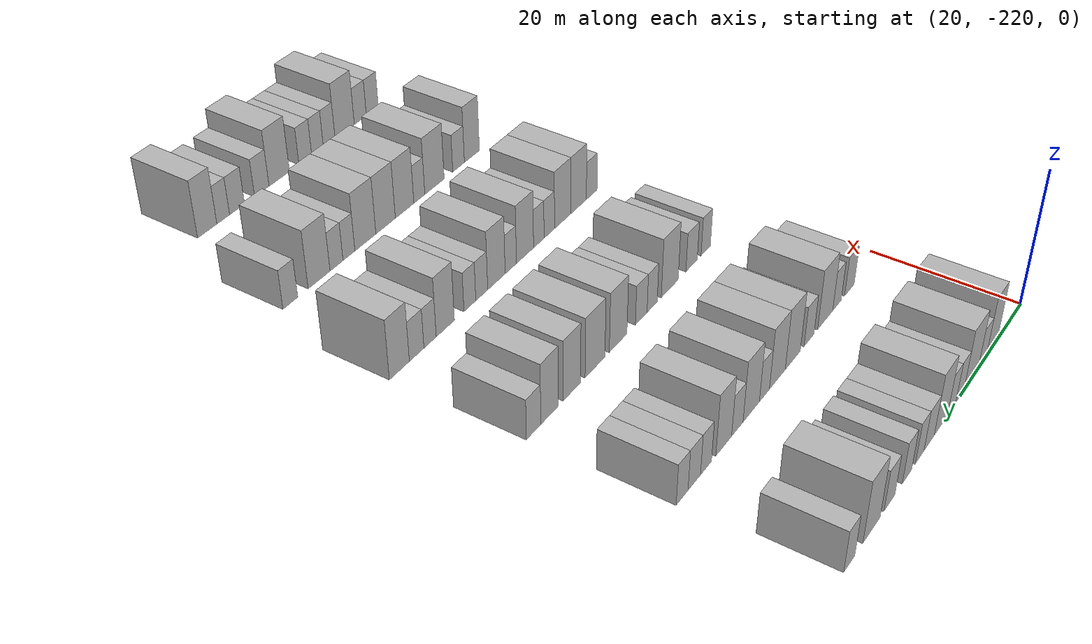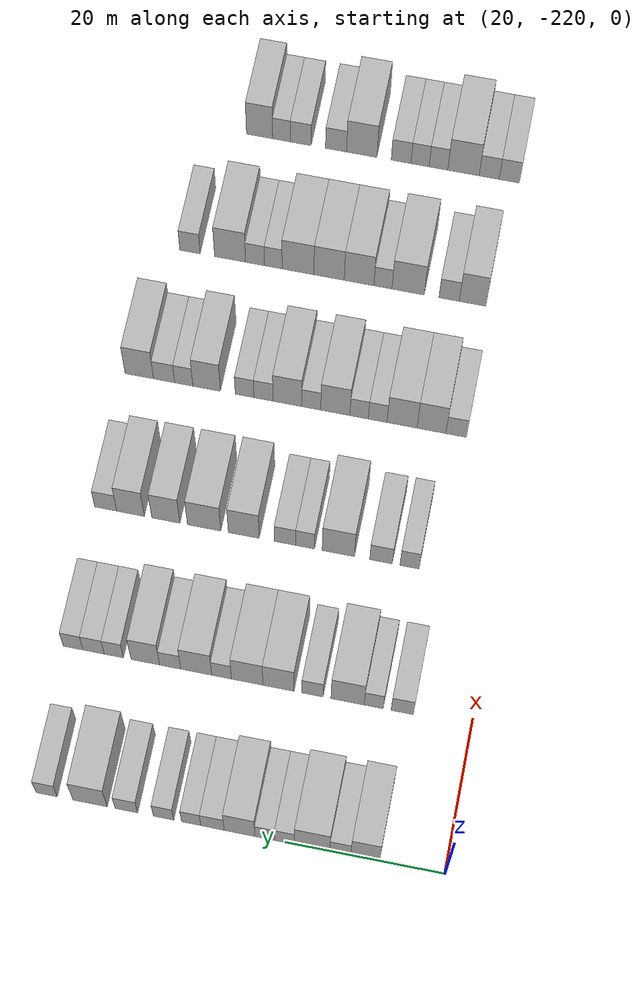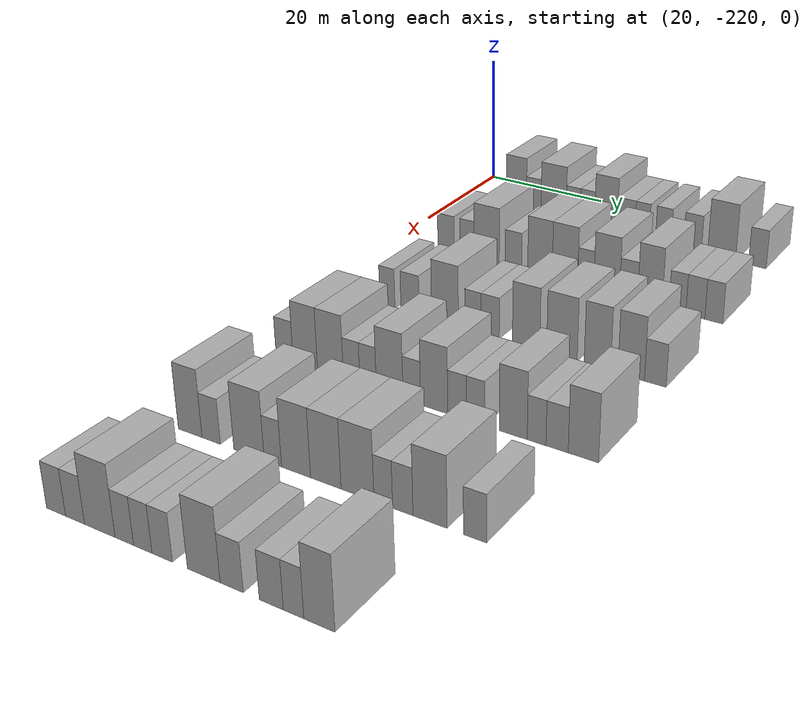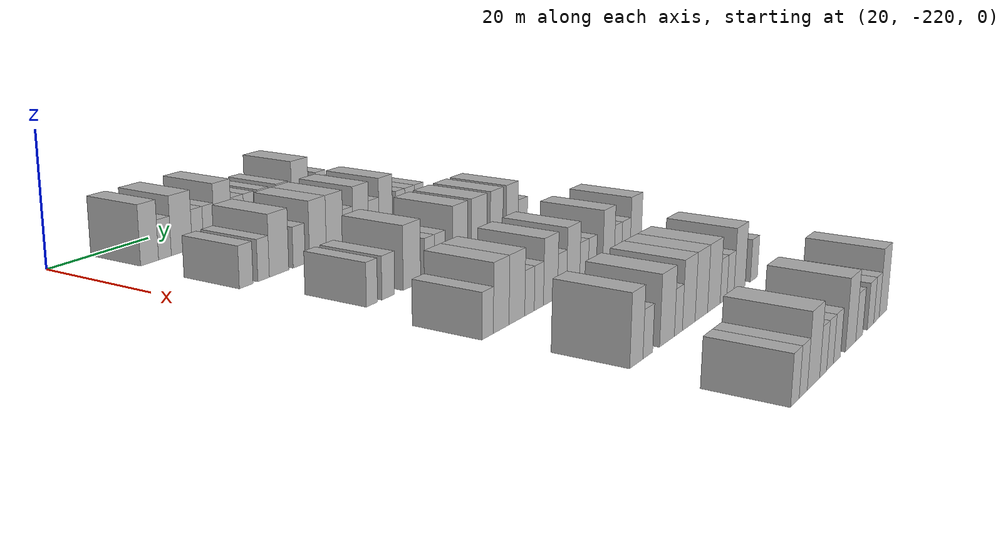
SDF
<sdf version="1.6">
 <world name="default">
  <model name="building_38">
   <static>1</static>
   <pose>25.0000 -209.9758 0 0.000000 0.000000 0.000000</pose>
   <link name="link">
    <pose>0 0 4.50 0 0 0</pose>
    <collision name="collision"><geometry><box><size>10.0000 3.6077 9.0000</size></box></geometry></collision>
    <visual name="visual">
     <cast_shadows>0</cast_shadows>
     <geometry><box><size>10.0000 3.6077 9.0000</size></box></geometry>
     <material>
      <script>
       <uri>model://HANNAS_wall/materials/scripts</uri>
       <uri>model://HANNAS_wall/materials/textures</uri>
       <name>vrc/HANNAS_wall</name>
      </script>
     </material>
    </visual>
   </link>
  </model>
  <model name="building_39">
   <static>1</static>
   <pose>25.0000 -206.8607 0 0.000000 0.000000 0.000000</pose>
   <link name="link">
    <pose>0 0 3.00 0 0 0</pose>
    <collision name="collision"><geometry><box><size>10.0000 2.6225 6.0000</size></box></geometry></collision>
    <visual name="visual">
     <cast_shadows>0</cast_shadows>
     <geometry><box><size>10.0000 2.6225 6.0000</size></box></geometry>
     <material>
      <script>
       <uri>model://HANNAS_wall/materials/scripts</uri>
       <uri>model://HANNAS_wall/materials/textures</uri>
       <name>vrc/HANNAS_wall</name>
      </script>
     </material>
    </visual>
   </link>
  </model>
  <model name="building_40">
   <static>1</static>
   <pose>25.0000 -203.3271 0 0.000000 0.000000 0.000000</pose>
   <link name="link">
    <pose>0 0 4.50 0 0 0</pose>
    <collision name="collision"><geometry><box><size>10.0000 4.4448 9.0000</size></box></geometry></collision>
    <visual name="visual">
     <cast_shadows>0</cast_shadows>
     <geometry><box><size>10.0000 4.4448 9.0000</size></box></geometry>
     <material>
      <script>
       <uri>model://HANNAS_wall/materials/scripts</uri>
       <uri>model://HANNAS_wall/materials/textures</uri>
       <name>vrc/HANNAS_wall</name>
      </script>
     </material>
    </visual>
   </link>
  </model>
  <model name="building_41">
   <static>1</static>
   <pose>25.0000 -199.8717 0 0.000000 0.000000 0.000000</pose>
   <link name="link">
    <pose>0 0 3.00 0 0 0</pose>
    <collision name="collision"><geometry><box><size>10.0000 2.4660 6.0000</size></box></geometry></collision>
    <visual name="visual">
     <cast_shadows>0</cast_shadows>
     <geometry><box><size>10.0000 2.4660 6.0000</size></box></geometry>
     <material>
      <script>
       <uri>model://HANNAS_wall/materials/scripts</uri>
       <uri>model://HANNAS_wall/materials/textures</uri>
       <name>vrc/HANNAS_wall</name>
      </script>
     </material>
    </visual>
   </link>
  </model>
  <model name="building_42">
   <static>1</static>
   <pose>25.0000 -197.4052 0 0.000000 0.000000 0.000000</pose>
   <link name="link">
    <pose>0 0 3.00 0 0 0</pose>
    <collision name="collision"><geometry><box><size>10.0000 2.4670 6.0000</size></box></geometry></collision>
    <visual name="visual">
     <cast_shadows>0</cast_shadows>
     <geometry><box><size>10.0000 2.4670 6.0000</size></box></geometry>
     <material>
      <script>
       <uri>model://HANNAS_wall/materials/scripts</uri>
       <uri>model://HANNAS_wall/materials/textures</uri>
       <name>vrc/HANNAS_wall</name>
      </script>
     </material>
    </visual>
   </link>
  </model>
  <model name="building_43">
   <static>1</static>
   <pose>25.0000 -194.2244 0 0.000000 0.000000 0.000000</pose>
   <link name="link">
    <pose>0 0 4.50 0 0 0</pose>
    <collision name="collision"><geometry><box><size>10.0000 3.8945 9.0000</size></box></geometry></collision>
    <visual name="visual">
     <cast_shadows>0</cast_shadows>
     <geometry><box><size>10.0000 3.8945 9.0000</size></box></geometry>
     <material>
      <script>
       <uri>model://HANNAS_wall/materials/scripts</uri>
       <uri>model://HANNAS_wall/materials/textures</uri>
       <name>vrc/HANNAS_wall</name>
      </script>
     </material>
    </visual>
   </link>
  </model>
  <model name="building_44">
   <static>1</static>
   <pose>25.0000 -190.7999 0 0.000000 0.000000 0.000000</pose>
   <link name="link">
    <pose>0 0 3.00 0 0 0</pose>
    <collision name="collision"><geometry><box><size>10.0000 2.9545 6.0000</size></box></geometry></collision>
    <visual name="visual">
     <cast_shadows>0</cast_shadows>
     <geometry><box><size>10.0000 2.9545 6.0000</size></box></geometry>
     <material>
      <script>
       <uri>model://HANNAS_wall/materials/scripts</uri>
       <uri>model://HANNAS_wall/materials/textures</uri>
       <name>vrc/HANNAS_wall</name>
      </script>
     </material>
    </visual>
   </link>
  </model>
  <model name="building_45">
   <static>1</static>
   <pose>25.0000 -188.1110 0 0.000000 0.000000 0.000000</pose>
   <link name="link">
    <pose>0 0 3.00 0 0 0</pose>
    <collision name="collision"><geometry><box><size>10.0000 2.4233 6.0000</size></box></geometry></collision>
    <visual name="visual">
     <cast_shadows>0</cast_shadows>
     <geometry><box><size>10.0000 2.4233 6.0000</size></box></geometry>
     <material>
      <script>
       <uri>model://HANNAS_wall/materials/scripts</uri>
       <uri>model://HANNAS_wall/materials/textures</uri>
       <name>vrc/HANNAS_wall</name>
      </script>
     </material>
    </visual>
   </link>
  </model>
  <model name="building_46">
   <static>1</static>
   <pose>25.0000 -184.6166 0 0.000000 0.000000 0.000000</pose>
   <link name="link">
    <pose>0 0 3.00 0 0 0</pose>
    <collision name="collision"><geometry><box><size>10.0000 2.5656 6.0000</size></box></geometry></collision>
    <visual name="visual">
     <cast_shadows>0</cast_shadows>
     <geometry><box><size>10.0000 2.5656 6.0000</size></box></geometry>
     <material>
      <script>
       <uri>model://HANNAS_wall/materials/scripts</uri>
       <uri>model://HANNAS_wall/materials/textures</uri>
       <name>vrc/HANNAS_wall</name>
      </script>
     </material>
    </visual>
   </link>
  </model>
  <model name="building_47">
   <static>1</static>
   <pose>25.0000 -179.9043 0 0.000000 0.000000 0.000000</pose>
   <link name="link">
    <pose>0 0 3.00 0 0 0</pose>
    <collision name="collision"><geometry><box><size>10.0000 2.8590 6.0000</size></box></geometry></collision>
    <visual name="visual">
     <cast_shadows>0</cast_shadows>
     <geometry><box><size>10.0000 2.8590 6.0000</size></box></geometry>
     <material>
      <script>
       <uri>model://HANNAS_wall/materials/scripts</uri>
       <uri>model://HANNAS_wall/materials/textures</uri>
       <name>vrc/HANNAS_wall</name>
      </script>
     </material>
    </visual>
   </link>
  </model>
  <model name="building_48">
   <static>1</static>
   <pose>25.0000 -175.2911 0 0.000000 0.000000 0.000000</pose>
   <link name="link">
    <pose>0 0 4.50 0 0 0</pose>
    <collision name="collision"><geometry><box><size>10.0000 4.3674 9.0000</size></box></geometry></collision>
    <visual name="visual">
     <cast_shadows>0</cast_shadows>
     <geometry><box><size>10.0000 4.3674 9.0000</size></box></geometry>
     <material>
      <script>
       <uri>model://HANNAS_wall/materials/scripts</uri>
       <uri>model://HANNAS_wall/materials/textures</uri>
       <name>vrc/HANNAS_wall</name>
      </script>
     </material>
    </visual>
   </link>
  </model>
  <model name="building_49">
   <static>1</static>
   <pose>25.0000 -169.7590 0 0.000000 0.000000 0.000000</pose>
   <link name="link">
    <pose>0 0 3.00 0 0 0</pose>
    <collision name="collision"><geometry><box><size>10.0000 2.6968 6.0000</size></box></geometry></collision>
    <visual name="visual">
     <cast_shadows>0</cast_shadows>
     <geometry><box><size>10.0000 2.6968 6.0000</size></box></geometry>
     <material>
      <script>
       <uri>model://HANNAS_wall/materials/scripts</uri>
       <uri>model://HANNAS_wall/materials/textures</uri>
       <name>vrc/HANNAS_wall</name>
      </script>
     </material>
    </visual>
   </link>
  </model>
  <model name="building_210">
   <static>1</static>
   <pose>44.0000 -211.0992 0 0.000000 0.000000 0.000000</pose>
   <link name="link">
    <pose>0 0 3.00 0 0 0</pose>
    <collision name="collision"><geometry><box><size>10.0000 2.8357 6.0000</size></box></geometry></collision>
    <visual name="visual">
     <cast_shadows>0</cast_shadows>
     <geometry><box><size>10.0000 2.8357 6.0000</size></box></geometry>
     <material>
      <script>
       <uri>model://HANNAS_wall/materials/scripts</uri>
       <uri>model://HANNAS_wall/materials/textures</uri>
       <name>vrc/HANNAS_wall</name>
      </script>
     </material>
    </visual>
   </link>
  </model>
  <model name="building_211">
   <static>1</static>
   <pose>44.0000 -207.4579 0 0.000000 0.000000 0.000000</pose>
   <link name="link">
    <pose>0 0 3.00 0 0 0</pose>
    <collision name="collision"><geometry><box><size>10.0000 2.4468 6.0000</size></box></geometry></collision>
    <visual name="visual">
     <cast_shadows>0</cast_shadows>
     <geometry><box><size>10.0000 2.4468 6.0000</size></box></geometry>
     <material>
      <script>
       <uri>model://HANNAS_wall/materials/scripts</uri>
       <uri>model://HANNAS_wall/materials/textures</uri>
       <name>vrc/HANNAS_wall</name>
      </script>
     </material>
    </visual>
   </link>
  </model>
  <model name="building_212">
   <static>1</static>
   <pose>44.0000 -204.1045 0 0.000000 0.000000 0.000000</pose>
   <link name="link">
    <pose>0 0 4.50 0 0 0</pose>
    <collision name="collision"><geometry><box><size>10.0000 4.2601 9.0000</size></box></geometry></collision>
    <visual name="visual">
     <cast_shadows>0</cast_shadows>
     <geometry><box><size>10.0000 4.2601 9.0000</size></box></geometry>
     <material>
      <script>
       <uri>model://HANNAS_wall/materials/scripts</uri>
       <uri>model://HANNAS_wall/materials/textures</uri>
       <name>vrc/HANNAS_wall</name>
      </script>
     </material>
    </visual>
   </link>
  </model>
  <model name="building_213">
   <static>1</static>
   <pose>44.0000 -199.6056 0 0.000000 0.000000 0.000000</pose>
   <link name="link">
    <pose>0 0 3.00 0 0 0</pose>
    <collision name="collision"><geometry><box><size>10.0000 2.7378 6.0000</size></box></geometry></collision>
    <visual name="visual">
     <cast_shadows>0</cast_shadows>
     <geometry><box><size>10.0000 2.7378 6.0000</size></box></geometry>
     <material>
      <script>
       <uri>model://HANNAS_wall/materials/scripts</uri>
       <uri>model://HANNAS_wall/materials/textures</uri>
       <name>vrc/HANNAS_wall</name>
      </script>
     </material>
    </visual>
   </link>
  </model>
  <model name="building_214">
   <static>1</static>
   <pose>44.0000 -195.2384 0 0.000000 0.000000 0.000000</pose>
   <link name="link">
    <pose>0 0 4.50 0 0 0</pose>
    <collision name="collision"><geometry><box><size>10.0000 3.9965 9.0000</size></box></geometry></collision>
    <visual name="visual">
     <cast_shadows>0</cast_shadows>
     <geometry><box><size>10.0000 3.9965 9.0000</size></box></geometry>
     <material>
      <script>
       <uri>model://HANNAS_wall/materials/scripts</uri>
       <uri>model://HANNAS_wall/materials/textures</uri>
       <name>vrc/HANNAS_wall</name>
      </script>
     </material>
    </visual>
   </link>
  </model>
  <model name="building_215">
   <static>1</static>
   <pose>44.0000 -191.2073 0 0.000000 0.000000 0.000000</pose>
   <link name="link">
    <pose>0 0 4.50 0 0 0</pose>
    <collision name="collision"><geometry><box><size>10.0000 4.0656 9.0000</size></box></geometry></collision>
    <visual name="visual">
     <cast_shadows>0</cast_shadows>
     <geometry><box><size>10.0000 4.0656 9.0000</size></box></geometry>
     <material>
      <script>
       <uri>model://HANNAS_wall/materials/scripts</uri>
       <uri>model://HANNAS_wall/materials/textures</uri>
       <name>vrc/HANNAS_wall</name>
      </script>
     </material>
    </visual>
   </link>
  </model>
  <model name="building_216">
   <static>1</static>
   <pose>44.0000 -187.9061 0 0.000000 0.000000 0.000000</pose>
   <link name="link">
    <pose>0 0 3.00 0 0 0</pose>
    <collision name="collision"><geometry><box><size>10.0000 2.5368 6.0000</size></box></geometry></collision>
    <visual name="visual">
     <cast_shadows>0</cast_shadows>
     <geometry><box><size>10.0000 2.5368 6.0000</size></box></geometry>
     <material>
      <script>
       <uri>model://HANNAS_wall/materials/scripts</uri>
       <uri>model://HANNAS_wall/materials/textures</uri>
       <name>vrc/HANNAS_wall</name>
      </script>
     </material>
    </visual>
   </link>
  </model>
  <model name="building_217">
   <static>1</static>
   <pose>44.0000 -184.6345 0 0.000000 0.000000 0.000000</pose>
   <link name="link">
    <pose>0 0 4.50 0 0 0</pose>
    <collision name="collision"><geometry><box><size>10.0000 4.0064 9.0000</size></box></geometry></collision>
    <visual name="visual">
     <cast_shadows>0</cast_shadows>
     <geometry><box><size>10.0000 4.0064 9.0000</size></box></geometry>
     <material>
      <script>
       <uri>model://HANNAS_wall/materials/scripts</uri>
       <uri>model://HANNAS_wall/materials/textures</uri>
       <name>vrc/HANNAS_wall</name>
      </script>
     </material>
    </visual>
   </link>
  </model>
  <model name="building_218">
   <static>1</static>
   <pose>44.0000 -181.2583 0 0.000000 0.000000 0.000000</pose>
   <link name="link">
    <pose>0 0 3.00 0 0 0</pose>
    <collision name="collision"><geometry><box><size>10.0000 2.7460 6.0000</size></box></geometry></collision>
    <visual name="visual">
     <cast_shadows>0</cast_shadows>
     <geometry><box><size>10.0000 2.7460 6.0000</size></box></geometry>
     <material>
      <script>
       <uri>model://HANNAS_wall/materials/scripts</uri>
       <uri>model://HANNAS_wall/materials/textures</uri>
       <name>vrc/HANNAS_wall</name>
      </script>
     </material>
    </visual>
   </link>
  </model>
  <model name="building_219">
   <static>1</static>
   <pose>44.0000 -178.0378 0 0.000000 0.000000 0.000000</pose>
   <link name="link">
    <pose>0 0 4.50 0 0 0</pose>
    <collision name="collision"><geometry><box><size>10.0000 3.6950 9.0000</size></box></geometry></collision>
    <visual name="visual">
     <cast_shadows>0</cast_shadows>
     <geometry><box><size>10.0000 3.6950 9.0000</size></box></geometry>
     <material>
      <script>
       <uri>model://HANNAS_wall/materials/scripts</uri>
       <uri>model://HANNAS_wall/materials/textures</uri>
       <name>vrc/HANNAS_wall</name>
      </script>
     </material>
    </visual>
   </link>
  </model>
  <model name="building_220">
   <static>1</static>
   <pose>44.0000 -173.9468 0 0.000000 0.000000 0.000000</pose>
   <link name="link">
    <pose>0 0 3.00 0 0 0</pose>
    <collision name="collision"><geometry><box><size>10.0000 2.4871 6.0000</size></box></geometry></collision>
    <visual name="visual">
     <cast_shadows>0</cast_shadows>
     <geometry><box><size>10.0000 2.4871 6.0000</size></box></geometry>
     <material>
      <script>
       <uri>model://HANNAS_wall/materials/scripts</uri>
       <uri>model://HANNAS_wall/materials/textures</uri>
       <name>vrc/HANNAS_wall</name>
      </script>
     </material>
    </visual>
   </link>
  </model>
  <model name="building_221">
   <static>1</static>
   <pose>44.0000 -171.3198 0 0.000000 0.000000 0.000000</pose>
   <link name="link">
    <pose>0 0 3.00 0 0 0</pose>
    <collision name="collision"><geometry><box><size>10.0000 2.7669 6.0000</size></box></geometry></collision>
    <visual name="visual">
     <cast_shadows>0</cast_shadows>
     <geometry><box><size>10.0000 2.7669 6.0000</size></box></geometry>
     <material>
      <script>
       <uri>model://HANNAS_wall/materials/scripts</uri>
       <uri>model://HANNAS_wall/materials/textures</uri>
       <name>vrc/HANNAS_wall</name>
      </script>
     </material>
    </visual>
   </link>
  </model>
  <model name="building_222">
   <static>1</static>
   <pose>44.0000 -168.6490 0 0.000000 0.000000 0.000000</pose>
   <link name="link">
    <pose>0 0 3.00 0 0 0</pose>
    <collision name="collision"><geometry><box><size>10.0000 2.5746 6.0000</size></box></geometry></collision>
    <visual name="visual">
     <cast_shadows>0</cast_shadows>
     <geometry><box><size>10.0000 2.5746 6.0000</size></box></geometry>
     <material>
      <script>
       <uri>model://HANNAS_wall/materials/scripts</uri>
       <uri>model://HANNAS_wall/materials/textures</uri>
       <name>vrc/HANNAS_wall</name>
      </script>
     </material>
    </visual>
   </link>
  </model>
  <model name="building_393">
   <static>1</static>
   <pose>63.0000 -208.5401 0 0.000000 0.000000 0.000000</pose>
   <link name="link">
    <pose>0 0 3.00 0 0 0</pose>
    <collision name="collision"><geometry><box><size>10.0000 2.4893 6.0000</size></box></geometry></collision>
    <visual name="visual">
     <cast_shadows>0</cast_shadows>
     <geometry><box><size>10.0000 2.4893 6.0000</size></box></geometry>
     <material>
      <script>
       <uri>model://HANNAS_wall/materials/scripts</uri>
       <uri>model://HANNAS_wall/materials/textures</uri>
       <name>vrc/HANNAS_wall</name>
      </script>
     </material>
    </visual>
   </link>
  </model>
  <model name="building_394">
   <static>1</static>
   <pose>63.0000 -204.8172 0 0.000000 0.000000 0.000000</pose>
   <link name="link">
    <pose>0 0 3.00 0 0 0</pose>
    <collision name="collision"><geometry><box><size>10.0000 2.9564 6.0000</size></box></geometry></collision>
    <visual name="visual">
     <cast_shadows>0</cast_shadows>
     <geometry><box><size>10.0000 2.9564 6.0000</size></box></geometry>
     <material>
      <script>
       <uri>model://HANNAS_wall/materials/scripts</uri>
       <uri>model://HANNAS_wall/materials/textures</uri>
       <name>vrc/HANNAS_wall</name>
      </script>
     </material>
    </visual>
   </link>
  </model>
  <model name="building_395">
   <static>1</static>
   <pose>63.0000 -199.2210 0 0.000000 0.000000 0.000000</pose>
   <link name="link">
    <pose>0 0 4.50 0 0 0</pose>
    <collision name="collision"><geometry><box><size>10.0000 4.2360 9.0000</size></box></geometry></collision>
    <visual name="visual">
     <cast_shadows>0</cast_shadows>
     <geometry><box><size>10.0000 4.2360 9.0000</size></box></geometry>
     <material>
      <script>
       <uri>model://HANNAS_wall/materials/scripts</uri>
       <uri>model://HANNAS_wall/materials/textures</uri>
       <name>vrc/HANNAS_wall</name>
      </script>
     </material>
    </visual>
   </link>
  </model>
  <model name="building_396">
   <static>1</static>
   <pose>63.0000 -194.8584 0 0.000000 0.000000 0.000000</pose>
   <link name="link">
    <pose>0 0 3.00 0 0 0</pose>
    <collision name="collision"><geometry><box><size>10.0000 2.4892 6.0000</size></box></geometry></collision>
    <visual name="visual">
     <cast_shadows>0</cast_shadows>
     <geometry><box><size>10.0000 2.4892 6.0000</size></box></geometry>
     <material>
      <script>
       <uri>model://HANNAS_wall/materials/scripts</uri>
       <uri>model://HANNAS_wall/materials/textures</uri>
       <name>vrc/HANNAS_wall</name>
      </script>
     </material>
    </visual>
   </link>
  </model>
  <model name="building_397">
   <static>1</static>
   <pose>63.0000 -192.2192 0 0.000000 0.000000 0.000000</pose>
   <link name="link">
    <pose>0 0 3.00 0 0 0</pose>
    <collision name="collision"><geometry><box><size>10.0000 2.7891 6.0000</size></box></geometry></collision>
    <visual name="visual">
     <cast_shadows>0</cast_shadows>
     <geometry><box><size>10.0000 2.7891 6.0000</size></box></geometry>
     <material>
      <script>
       <uri>model://HANNAS_wall/materials/scripts</uri>
       <uri>model://HANNAS_wall/materials/textures</uri>
       <name>vrc/HANNAS_wall</name>
      </script>
     </material>
    </visual>
   </link>
  </model>
  <model name="building_398">
   <static>1</static>
   <pose>63.0000 -186.7934 0 0.000000 0.000000 0.000000</pose>
   <link name="link">
    <pose>0 0 4.50 0 0 0</pose>
    <collision name="collision"><geometry><box><size>10.0000 4.0626 9.0000</size></box></geometry></collision>
    <visual name="visual">
     <cast_shadows>0</cast_shadows>
     <geometry><box><size>10.0000 4.0626 9.0000</size></box></geometry>
     <material>
      <script>
       <uri>model://HANNAS_wall/materials/scripts</uri>
       <uri>model://HANNAS_wall/materials/textures</uri>
       <name>vrc/HANNAS_wall</name>
      </script>
     </material>
    </visual>
   </link>
  </model>
  <model name="building_399">
   <static>1</static>
   <pose>63.0000 -181.5579 0 0.000000 0.000000 0.000000</pose>
   <link name="link">
    <pose>0 0 4.50 0 0 0</pose>
    <collision name="collision"><geometry><box><size>10.0000 4.4083 9.0000</size></box></geometry></collision>
    <visual name="visual">
     <cast_shadows>0</cast_shadows>
     <geometry><box><size>10.0000 4.4083 9.0000</size></box></geometry>
     <material>
      <script>
       <uri>model://HANNAS_wall/materials/scripts</uri>
       <uri>model://HANNAS_wall/materials/textures</uri>
       <name>vrc/HANNAS_wall</name>
      </script>
     </material>
    </visual>
   </link>
  </model>
  <model name="building_400">
   <static>1</static>
   <pose>63.0000 -176.4935 0 0.000000 0.000000 0.000000</pose>
   <link name="link">
    <pose>0 0 4.50 0 0 0</pose>
    <collision name="collision"><geometry><box><size>10.0000 3.7206 9.0000</size></box></geometry></collision>
    <visual name="visual">
     <cast_shadows>0</cast_shadows>
     <geometry><box><size>10.0000 3.7206 9.0000</size></box></geometry>
     <material>
      <script>
       <uri>model://HANNAS_wall/materials/scripts</uri>
       <uri>model://HANNAS_wall/materials/textures</uri>
       <name>vrc/HANNAS_wall</name>
      </script>
     </material>
    </visual>
   </link>
  </model>
  <model name="building_401">
   <static>1</static>
   <pose>63.0000 -171.8029 0 0.000000 0.000000 0.000000</pose>
   <link name="link">
    <pose>0 0 4.50 0 0 0</pose>
    <collision name="collision"><geometry><box><size>10.0000 3.6606 9.0000</size></box></geometry></collision>
    <visual name="visual">
     <cast_shadows>0</cast_shadows>
     <geometry><box><size>10.0000 3.6606 9.0000</size></box></geometry>
     <material>
      <script>
       <uri>model://HANNAS_wall/materials/scripts</uri>
       <uri>model://HANNAS_wall/materials/textures</uri>
       <name>vrc/HANNAS_wall</name>
      </script>
     </material>
    </visual>
   </link>
  </model>
  <model name="building_402">
   <static>1</static>
   <pose>63.0000 -168.5124 0 0.000000 0.000000 0.000000</pose>
   <link name="link">
    <pose>0 0 3.00 0 0 0</pose>
    <collision name="collision"><geometry><box><size>10.0000 2.9203 6.0000</size></box></geometry></collision>
    <visual name="visual">
     <cast_shadows>0</cast_shadows>
     <geometry><box><size>10.0000 2.9203 6.0000</size></box></geometry>
     <material>
      <script>
       <uri>model://HANNAS_wall/materials/scripts</uri>
       <uri>model://HANNAS_wall/materials/textures</uri>
       <name>vrc/HANNAS_wall</name>
      </script>
     </material>
    </visual>
   </link>
  </model>
  <model name="building_567">
   <static>1</static>
   <pose>82.0000 -211.2577 0 0.000000 0.000000 0.000000</pose>
   <link name="link">
    <pose>0 0 3.00 0 0 0</pose>
    <collision name="collision"><geometry><box><size>10.0000 2.7221 6.0000</size></box></geometry></collision>
    <visual name="visual">
     <cast_shadows>0</cast_shadows>
     <geometry><box><size>10.0000 2.7221 6.0000</size></box></geometry>
     <material>
      <script>
       <uri>model://HANNAS_wall/materials/scripts</uri>
       <uri>model://HANNAS_wall/materials/textures</uri>
       <name>vrc/HANNAS_wall</name>
      </script>
     </material>
    </visual>
   </link>
  </model>
  <model name="building_568">
   <static>1</static>
   <pose>82.0000 -207.9766 0 0.000000 0.000000 0.000000</pose>
   <link name="link">
    <pose>0 0 4.50 0 0 0</pose>
    <collision name="collision"><geometry><box><size>10.0000 3.8401 9.0000</size></box></geometry></collision>
    <visual name="visual">
     <cast_shadows>0</cast_shadows>
     <geometry><box><size>10.0000 3.8401 9.0000</size></box></geometry>
     <material>
      <script>
       <uri>model://HANNAS_wall/materials/scripts</uri>
       <uri>model://HANNAS_wall/materials/textures</uri>
       <name>vrc/HANNAS_wall</name>
      </script>
     </material>
    </visual>
   </link>
  </model>
  <model name="building_569">
   <static>1</static>
   <pose>82.0000 -204.0519 0 0.000000 0.000000 0.000000</pose>
   <link name="link">
    <pose>0 0 4.50 0 0 0</pose>
    <collision name="collision"><geometry><box><size>10.0000 4.0092 9.0000</size></box></geometry></collision>
    <visual name="visual">
     <cast_shadows>0</cast_shadows>
     <geometry><box><size>10.0000 4.0092 9.0000</size></box></geometry>
     <material>
      <script>
       <uri>model://HANNAS_wall/materials/scripts</uri>
       <uri>model://HANNAS_wall/materials/textures</uri>
       <name>vrc/HANNAS_wall</name>
      </script>
     </material>
    </visual>
   </link>
  </model>
  <model name="building_570">
   <static>1</static>
   <pose>82.0000 -200.7986 0 0.000000 0.000000 0.000000</pose>
   <link name="link">
    <pose>0 0 3.00 0 0 0</pose>
    <collision name="collision"><geometry><box><size>10.0000 2.4975 6.0000</size></box></geometry></collision>
    <visual name="visual">
     <cast_shadows>0</cast_shadows>
     <geometry><box><size>10.0000 2.4975 6.0000</size></box></geometry>
     <material>
      <script>
       <uri>model://HANNAS_wall/materials/scripts</uri>
       <uri>model://HANNAS_wall/materials/textures</uri>
       <name>vrc/HANNAS_wall</name>
      </script>
     </material>
    </visual>
   </link>
  </model>
  <model name="building_571">
   <static>1</static>
   <pose>82.0000 -198.3171 0 0.000000 0.000000 0.000000</pose>
   <link name="link">
    <pose>0 0 3.00 0 0 0</pose>
    <collision name="collision"><geometry><box><size>10.0000 2.4657 6.0000</size></box></geometry></collision>
    <visual name="visual">
     <cast_shadows>0</cast_shadows>
     <geometry><box><size>10.0000 2.4657 6.0000</size></box></geometry>
     <material>
      <script>
       <uri>model://HANNAS_wall/materials/scripts</uri>
       <uri>model://HANNAS_wall/materials/textures</uri>
       <name>vrc/HANNAS_wall</name>
      </script>
     </material>
    </visual>
   </link>
  </model>
  <model name="building_572">
   <static>1</static>
   <pose>82.0000 -195.1207 0 0.000000 0.000000 0.000000</pose>
   <link name="link">
    <pose>0 0 4.50 0 0 0</pose>
    <collision name="collision"><geometry><box><size>10.0000 3.9270 9.0000</size></box></geometry></collision>
    <visual name="visual">
     <cast_shadows>0</cast_shadows>
     <geometry><box><size>10.0000 3.9270 9.0000</size></box></geometry>
     <material>
      <script>
       <uri>model://HANNAS_wall/materials/scripts</uri>
       <uri>model://HANNAS_wall/materials/textures</uri>
       <name>vrc/HANNAS_wall</name>
      </script>
     </material>
    </visual>
   </link>
  </model>
  <model name="building_573">
   <static>1</static>
   <pose>82.0000 -191.8842 0 0.000000 0.000000 0.000000</pose>
   <link name="link">
    <pose>0 0 3.00 0 0 0</pose>
    <collision name="collision"><geometry><box><size>10.0000 2.5460 6.0000</size></box></geometry></collision>
    <visual name="visual">
     <cast_shadows>0</cast_shadows>
     <geometry><box><size>10.0000 2.5460 6.0000</size></box></geometry>
     <material>
      <script>
       <uri>model://HANNAS_wall/materials/scripts</uri>
       <uri>model://HANNAS_wall/materials/textures</uri>
       <name>vrc/HANNAS_wall</name>
      </script>
     </material>
    </visual>
   </link>
  </model>
  <model name="building_574">
   <static>1</static>
   <pose>82.0000 -188.6836 0 0.000000 0.000000 0.000000</pose>
   <link name="link">
    <pose>0 0 4.50 0 0 0</pose>
    <collision name="collision"><geometry><box><size>10.0000 3.8553 9.0000</size></box></geometry></collision>
    <visual name="visual">
     <cast_shadows>0</cast_shadows>
     <geometry><box><size>10.0000 3.8553 9.0000</size></box></geometry>
     <material>
      <script>
       <uri>model://HANNAS_wall/materials/scripts</uri>
       <uri>model://HANNAS_wall/materials/textures</uri>
       <name>vrc/HANNAS_wall</name>
      </script>
     </material>
    </visual>
   </link>
  </model>
  <model name="building_575">
   <static>1</static>
   <pose>82.0000 -185.4660 0 0.000000 0.000000 0.000000</pose>
   <link name="link">
    <pose>0 0 3.00 0 0 0</pose>
    <collision name="collision"><geometry><box><size>10.0000 2.5798 6.0000</size></box></geometry></collision>
    <visual name="visual">
     <cast_shadows>0</cast_shadows>
     <geometry><box><size>10.0000 2.5798 6.0000</size></box></geometry>
     <material>
      <script>
       <uri>model://HANNAS_wall/materials/scripts</uri>
       <uri>model://HANNAS_wall/materials/textures</uri>
       <name>vrc/HANNAS_wall</name>
      </script>
     </material>
    </visual>
   </link>
  </model>
  <model name="building_576">
   <static>1</static>
   <pose>82.0000 -182.9208 0 0.000000 0.000000 0.000000</pose>
   <link name="link">
    <pose>0 0 3.00 0 0 0</pose>
    <collision name="collision"><geometry><box><size>10.0000 2.5107 6.0000</size></box></geometry></collision>
    <visual name="visual">
     <cast_shadows>0</cast_shadows>
     <geometry><box><size>10.0000 2.5107 6.0000</size></box></geometry>
     <material>
      <script>
       <uri>model://HANNAS_wall/materials/scripts</uri>
       <uri>model://HANNAS_wall/materials/textures</uri>
       <name>vrc/HANNAS_wall</name>
      </script>
     </material>
    </visual>
   </link>
  </model>
  <model name="building_577">
   <static>1</static>
   <pose>82.0000 -177.8015 0 0.000000 0.000000 0.000000</pose>
   <link name="link">
    <pose>0 0 4.50 0 0 0</pose>
    <collision name="collision"><geometry><box><size>10.0000 3.7279 9.0000</size></box></geometry></collision>
    <visual name="visual">
     <cast_shadows>0</cast_shadows>
     <geometry><box><size>10.0000 3.7279 9.0000</size></box></geometry>
     <material>
      <script>
       <uri>model://HANNAS_wall/materials/scripts</uri>
       <uri>model://HANNAS_wall/materials/textures</uri>
       <name>vrc/HANNAS_wall</name>
      </script>
     </material>
    </visual>
   </link>
  </model>
  <model name="building_578">
   <static>1</static>
   <pose>82.0000 -174.7078 0 0.000000 0.000000 0.000000</pose>
   <link name="link">
    <pose>0 0 3.00 0 0 0</pose>
    <collision name="collision"><geometry><box><size>10.0000 2.4595 6.0000</size></box></geometry></collision>
    <visual name="visual">
     <cast_shadows>0</cast_shadows>
     <geometry><box><size>10.0000 2.4595 6.0000</size></box></geometry>
     <material>
      <script>
       <uri>model://HANNAS_wall/materials/scripts</uri>
       <uri>model://HANNAS_wall/materials/textures</uri>
       <name>vrc/HANNAS_wall</name>
      </script>
     </material>
    </visual>
   </link>
  </model>
  <model name="building_579">
   <static>1</static>
   <pose>82.0000 -172.0420 0 0.000000 0.000000 0.000000</pose>
   <link name="link">
    <pose>0 0 3.00 0 0 0</pose>
    <collision name="collision"><geometry><box><size>10.0000 2.8720 6.0000</size></box></geometry></collision>
    <visual name="visual">
     <cast_shadows>0</cast_shadows>
     <geometry><box><size>10.0000 2.8720 6.0000</size></box></geometry>
     <material>
      <script>
       <uri>model://HANNAS_wall/materials/scripts</uri>
       <uri>model://HANNAS_wall/materials/textures</uri>
       <name>vrc/HANNAS_wall</name>
      </script>
     </material>
    </visual>
   </link>
  </model>
  <model name="building_580">
   <static>1</static>
   <pose>82.0000 -168.6805 0 0.000000 0.000000 0.000000</pose>
   <link name="link">
    <pose>0 0 4.50 0 0 0</pose>
    <collision name="collision"><geometry><box><size>10.0000 3.8512 9.0000</size></box></geometry></collision>
    <visual name="visual">
     <cast_shadows>0</cast_shadows>
     <geometry><box><size>10.0000 3.8512 9.0000</size></box></geometry>
     <material>
      <script>
       <uri>model://HANNAS_wall/materials/scripts</uri>
       <uri>model://HANNAS_wall/materials/textures</uri>
       <name>vrc/HANNAS_wall</name>
      </script>
     </material>
    </visual>
   </link>
  </model>
  <model name="building_741">
   <static>1</static>
   <pose>101.0000 -210.1217 0 0.000000 0.000000 0.000000</pose>
   <link name="link">
    <pose>0 0 4.50 0 0 0</pose>
    <collision name="collision"><geometry><box><size>10.0000 3.6058 9.0000</size></box></geometry></collision>
    <visual name="visual">
     <cast_shadows>0</cast_shadows>
     <geometry><box><size>10.0000 3.6058 9.0000</size></box></geometry>
     <material>
      <script>
       <uri>model://HANNAS_wall/materials/scripts</uri>
       <uri>model://HANNAS_wall/materials/textures</uri>
       <name>vrc/HANNAS_wall</name>
      </script>
     </material>
    </visual>
   </link>
  </model>
  <model name="building_742">
   <static>1</static>
   <pose>101.0000 -206.9413 0 0.000000 0.000000 0.000000</pose>
   <link name="link">
    <pose>0 0 3.00 0 0 0</pose>
    <collision name="collision"><geometry><box><size>10.0000 2.7550 6.0000</size></box></geometry></collision>
    <visual name="visual">
     <cast_shadows>0</cast_shadows>
     <geometry><box><size>10.0000 2.7550 6.0000</size></box></geometry>
     <material>
      <script>
       <uri>model://HANNAS_wall/materials/scripts</uri>
       <uri>model://HANNAS_wall/materials/textures</uri>
       <name>vrc/HANNAS_wall</name>
      </script>
     </material>
    </visual>
   </link>
  </model>
  <model name="building_743">
   <static>1</static>
   <pose>101.0000 -201.3552 0 0.000000 0.000000 0.000000</pose>
   <link name="link">
    <pose>0 0 4.50 0 0 0</pose>
    <collision name="collision"><geometry><box><size>10.0000 4.4173 9.0000</size></box></geometry></collision>
    <visual name="visual">
     <cast_shadows>0</cast_shadows>
     <geometry><box><size>10.0000 4.4173 9.0000</size></box></geometry>
     <material>
      <script>
       <uri>model://HANNAS_wall/materials/scripts</uri>
       <uri>model://HANNAS_wall/materials/textures</uri>
       <name>vrc/HANNAS_wall</name>
      </script>
     </material>
    </visual>
   </link>
  </model>
  <model name="building_744">
   <static>1</static>
   <pose>101.0000 -197.9193 0 0.000000 0.000000 0.000000</pose>
   <link name="link">
    <pose>0 0 3.00 0 0 0</pose>
    <collision name="collision"><geometry><box><size>10.0000 2.4545 6.0000</size></box></geometry></collision>
    <visual name="visual">
     <cast_shadows>0</cast_shadows>
     <geometry><box><size>10.0000 2.4545 6.0000</size></box></geometry>
     <material>
      <script>
       <uri>model://HANNAS_wall/materials/scripts</uri>
       <uri>model://HANNAS_wall/materials/textures</uri>
       <name>vrc/HANNAS_wall</name>
      </script>
     </material>
    </visual>
   </link>
  </model>
  <model name="building_745">
   <static>1</static>
   <pose>101.0000 -194.6621 0 0.000000 0.000000 0.000000</pose>
   <link name="link">
    <pose>0 0 4.50 0 0 0</pose>
    <collision name="collision"><geometry><box><size>10.0000 4.0599 9.0000</size></box></geometry></collision>
    <visual name="visual">
     <cast_shadows>0</cast_shadows>
     <geometry><box><size>10.0000 4.0599 9.0000</size></box></geometry>
     <material>
      <script>
       <uri>model://HANNAS_wall/materials/scripts</uri>
       <uri>model://HANNAS_wall/materials/textures</uri>
       <name>vrc/HANNAS_wall</name>
      </script>
     </material>
    </visual>
   </link>
  </model>
  <model name="building_746">
   <static>1</static>
   <pose>101.0000 -190.5523 0 0.000000 0.000000 0.000000</pose>
   <link name="link">
    <pose>0 0 4.50 0 0 0</pose>
    <collision name="collision"><geometry><box><size>10.0000 4.1598 9.0000</size></box></geometry></collision>
    <visual name="visual">
     <cast_shadows>0</cast_shadows>
     <geometry><box><size>10.0000 4.1598 9.0000</size></box></geometry>
     <material>
      <script>
       <uri>model://HANNAS_wall/materials/scripts</uri>
       <uri>model://HANNAS_wall/materials/textures</uri>
       <name>vrc/HANNAS_wall</name>
      </script>
     </material>
    </visual>
   </link>
  </model>
  <model name="building_747">
   <static>1</static>
   <pose>101.0000 -186.2913 0 0.000000 0.000000 0.000000</pose>
   <link name="link">
    <pose>0 0 4.50 0 0 0</pose>
    <collision name="collision"><geometry><box><size>10.0000 4.3621 9.0000</size></box></geometry></collision>
    <visual name="visual">
     <cast_shadows>0</cast_shadows>
     <geometry><box><size>10.0000 4.3621 9.0000</size></box></geometry>
     <material>
      <script>
       <uri>model://HANNAS_wall/materials/scripts</uri>
       <uri>model://HANNAS_wall/materials/textures</uri>
       <name>vrc/HANNAS_wall</name>
      </script>
     </material>
    </visual>
   </link>
  </model>
  <model name="building_748">
   <static>1</static>
   <pose>101.0000 -182.9018 0 0.000000 0.000000 0.000000</pose>
   <link name="link">
    <pose>0 0 3.00 0 0 0</pose>
    <collision name="collision"><geometry><box><size>10.0000 2.4169 6.0000</size></box></geometry></collision>
    <visual name="visual">
     <cast_shadows>0</cast_shadows>
     <geometry><box><size>10.0000 2.4169 6.0000</size></box></geometry>
     <material>
      <script>
       <uri>model://HANNAS_wall/materials/scripts</uri>
       <uri>model://HANNAS_wall/materials/textures</uri>
       <name>vrc/HANNAS_wall</name>
      </script>
     </material>
    </visual>
   </link>
  </model>
  <model name="building_749">
   <static>1</static>
   <pose>101.0000 -180.3934 0 0.000000 0.000000 0.000000</pose>
   <link name="link">
    <pose>0 0 3.00 0 0 0</pose>
    <collision name="collision"><geometry><box><size>10.0000 2.5998 6.0000</size></box></geometry></collision>
    <visual name="visual">
     <cast_shadows>0</cast_shadows>
     <geometry><box><size>10.0000 2.5998 6.0000</size></box></geometry>
     <material>
      <script>
       <uri>model://HANNAS_wall/materials/scripts</uri>
       <uri>model://HANNAS_wall/materials/textures</uri>
       <name>vrc/HANNAS_wall</name>
      </script>
     </material>
    </visual>
   </link>
  </model>
  <model name="building_750">
   <static>1</static>
   <pose>101.0000 -176.9566 0 0.000000 0.000000 0.000000</pose>
   <link name="link">
    <pose>0 0 4.50 0 0 0</pose>
    <collision name="collision"><geometry><box><size>10.0000 4.2739 9.0000</size></box></geometry></collision>
    <visual name="visual">
     <cast_shadows>0</cast_shadows>
     <geometry><box><size>10.0000 4.2739 9.0000</size></box></geometry>
     <material>
      <script>
       <uri>model://HANNAS_wall/materials/scripts</uri>
       <uri>model://HANNAS_wall/materials/textures</uri>
       <name>vrc/HANNAS_wall</name>
      </script>
     </material>
    </visual>
   </link>
  </model>
  <model name="building_751">
   <static>1</static>
   <pose>101.0000 -171.4183 0 0.000000 0.000000 0.000000</pose>
   <link name="link">
    <pose>0 0 3.00 0 0 0</pose>
    <collision name="collision"><geometry><box><size>10.0000 2.8026 6.0000</size></box></geometry></collision>
    <visual name="visual">
     <cast_shadows>0</cast_shadows>
     <geometry><box><size>10.0000 2.8026 6.0000</size></box></geometry>
     <material>
      <script>
       <uri>model://HANNAS_wall/materials/scripts</uri>
       <uri>model://HANNAS_wall/materials/textures</uri>
       <name>vrc/HANNAS_wall</name>
      </script>
     </material>
    </visual>
   </link>
  </model>
  <model name="building_922">
   <static>1</static>
   <pose>120.0000 -211.8972 0 0.000000 0.000000 0.000000</pose>
   <link name="link">
    <pose>0 0 3.00 0 0 0</pose>
    <collision name="collision"><geometry><box><size>10.0000 2.8048 6.0000</size></box></geometry></collision>
    <visual name="visual">
     <cast_shadows>0</cast_shadows>
     <geometry><box><size>10.0000 2.8048 6.0000</size></box></geometry>
     <material>
      <script>
       <uri>model://HANNAS_wall/materials/scripts</uri>
       <uri>model://HANNAS_wall/materials/textures</uri>
       <name>vrc/HANNAS_wall</name>
      </script>
     </material>
    </visual>
   </link>
  </model>
  <model name="building_923">
   <static>1</static>
   <pose>120.0000 -209.1057 0 0.000000 0.000000 0.000000</pose>
   <link name="link">
    <pose>0 0 3.00 0 0 0</pose>
    <collision name="collision"><geometry><box><size>10.0000 2.7780 6.0000</size></box></geometry></collision>
    <visual name="visual">
     <cast_shadows>0</cast_shadows>
     <geometry><box><size>10.0000 2.7780 6.0000</size></box></geometry>
     <material>
      <script>
       <uri>model://HANNAS_wall/materials/scripts</uri>
       <uri>model://HANNAS_wall/materials/textures</uri>
       <name>vrc/HANNAS_wall</name>
      </script>
     </material>
    </visual>
   </link>
  </model>
  <model name="building_924">
   <static>1</static>
   <pose>120.0000 -205.5433 0 0.000000 0.000000 0.000000</pose>
   <link name="link">
    <pose>0 0 4.50 0 0 0</pose>
    <collision name="collision"><geometry><box><size>10.0000 4.3470 9.0000</size></box></geometry></collision>
    <visual name="visual">
     <cast_shadows>0</cast_shadows>
     <geometry><box><size>10.0000 4.3470 9.0000</size></box></geometry>
     <material>
      <script>
       <uri>model://HANNAS_wall/materials/scripts</uri>
       <uri>model://HANNAS_wall/materials/textures</uri>
       <name>vrc/HANNAS_wall</name>
      </script>
     </material>
    </visual>
   </link>
  </model>
  <model name="building_925">
   <static>1</static>
   <pose>120.0000 -202.0771 0 0.000000 0.000000 0.000000</pose>
   <link name="link">
    <pose>0 0 3.00 0 0 0</pose>
    <collision name="collision"><geometry><box><size>10.0000 2.5853 6.0000</size></box></geometry></collision>
    <visual name="visual">
     <cast_shadows>0</cast_shadows>
     <geometry><box><size>10.0000 2.5853 6.0000</size></box></geometry>
     <material>
      <script>
       <uri>model://HANNAS_wall/materials/scripts</uri>
       <uri>model://HANNAS_wall/materials/textures</uri>
       <name>vrc/HANNAS_wall</name>
      </script>
     </material>
    </visual>
   </link>
  </model>
  <model name="building_926">
   <static>1</static>
   <pose>120.0000 -199.5179 0 0.000000 0.000000 0.000000</pose>
   <link name="link">
    <pose>0 0 3.00 0 0 0</pose>
    <collision name="collision"><geometry><box><size>10.0000 2.5330 6.0000</size></box></geometry></collision>
    <visual name="visual">
     <cast_shadows>0</cast_shadows>
     <geometry><box><size>10.0000 2.5330 6.0000</size></box></geometry>
     <material>
      <script>
       <uri>model://HANNAS_wall/materials/scripts</uri>
       <uri>model://HANNAS_wall/materials/textures</uri>
       <name>vrc/HANNAS_wall</name>
      </script>
     </material>
    </visual>
   </link>
  </model>
  <model name="building_927">
   <static>1</static>
   <pose>120.0000 -196.8787 0 0.000000 0.000000 0.000000</pose>
   <link name="link">
    <pose>0 0 3.00 0 0 0</pose>
    <collision name="collision"><geometry><box><size>10.0000 2.7455 6.0000</size></box></geometry></collision>
    <visual name="visual">
     <cast_shadows>0</cast_shadows>
     <geometry><box><size>10.0000 2.7455 6.0000</size></box></geometry>
     <material>
      <script>
       <uri>model://HANNAS_wall/materials/scripts</uri>
       <uri>model://HANNAS_wall/materials/textures</uri>
       <name>vrc/HANNAS_wall</name>
      </script>
     </material>
    </visual>
   </link>
  </model>
  <model name="building_928">
   <static>1</static>
   <pose>120.0000 -191.3821 0 0.000000 0.000000 0.000000</pose>
   <link name="link">
    <pose>0 0 4.50 0 0 0</pose>
    <collision name="collision"><geometry><box><size>10.0000 4.2476 9.0000</size></box></geometry></collision>
    <visual name="visual">
     <cast_shadows>0</cast_shadows>
     <geometry><box><size>10.0000 4.2476 9.0000</size></box></geometry>
     <material>
      <script>
       <uri>model://HANNAS_wall/materials/scripts</uri>
       <uri>model://HANNAS_wall/materials/textures</uri>
       <name>vrc/HANNAS_wall</name>
      </script>
     </material>
    </visual>
   </link>
  </model>
  <model name="building_929">
   <static>1</static>
   <pose>120.0000 -187.7890 0 0.000000 0.000000 0.000000</pose>
   <link name="link">
    <pose>0 0 3.00 0 0 0</pose>
    <collision name="collision"><geometry><box><size>10.0000 2.9386 6.0000</size></box></geometry></collision>
    <visual name="visual">
     <cast_shadows>0</cast_shadows>
     <geometry><box><size>10.0000 2.9386 6.0000</size></box></geometry>
     <material>
      <script>
       <uri>model://HANNAS_wall/materials/scripts</uri>
       <uri>model://HANNAS_wall/materials/textures</uri>
       <name>vrc/HANNAS_wall</name>
      </script>
     </material>
    </visual>
   </link>
  </model>
  <model name="building_930">
   <static>1</static>
   <pose>120.0000 -182.8488 0 0.000000 0.000000 0.000000</pose>
   <link name="link">
    <pose>0 0 3.00 0 0 0</pose>
    <collision name="collision"><geometry><box><size>10.0000 2.9417 6.0000</size></box></geometry></collision>
    <visual name="visual">
     <cast_shadows>0</cast_shadows>
     <geometry><box><size>10.0000 2.9417 6.0000</size></box></geometry>
     <material>
      <script>
       <uri>model://HANNAS_wall/materials/scripts</uri>
       <uri>model://HANNAS_wall/materials/textures</uri>
       <name>vrc/HANNAS_wall</name>
      </script>
     </material>
    </visual>
   </link>
  </model>
  <model name="building_931">
   <static>1</static>
   <pose>120.0000 -180.1452 0 0.000000 0.000000 0.000000</pose>
   <link name="link">
    <pose>0 0 3.00 0 0 0</pose>
    <collision name="collision"><geometry><box><size>10.0000 2.4656 6.0000</size></box></geometry></collision>
    <visual name="visual">
     <cast_shadows>0</cast_shadows>
     <geometry><box><size>10.0000 2.4656 6.0000</size></box></geometry>
     <material>
      <script>
       <uri>model://HANNAS_wall/materials/scripts</uri>
       <uri>model://HANNAS_wall/materials/textures</uri>
       <name>vrc/HANNAS_wall</name>
      </script>
     </material>
    </visual>
   </link>
  </model>
  <model name="building_932">
   <static>1</static>
   <pose>120.0000 -177.0789 0 0.000000 0.000000 0.000000</pose>
   <link name="link">
    <pose>0 0 4.50 0 0 0</pose>
    <collision name="collision"><geometry><box><size>10.0000 3.6670 9.0000</size></box></geometry></collision>
    <visual name="visual">
     <cast_shadows>0</cast_shadows>
     <geometry><box><size>10.0000 3.6670 9.0000</size></box></geometry>
     <material>
      <script>
       <uri>model://HANNAS_wall/materials/scripts</uri>
       <uri>model://HANNAS_wall/materials/textures</uri>
       <name>vrc/HANNAS_wall</name>
      </script>
     </material>
    </visual>
   </link>
  </model>
 </world>
</sdf>
